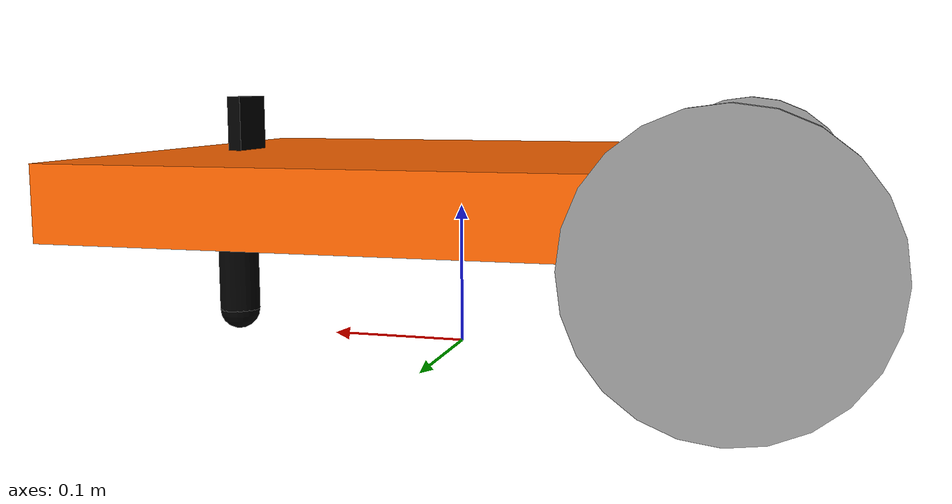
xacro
<?xml version="1.0"?>
<!-- Revolute-Revolute Manipulator -->
<robot name="mybot" xmlns:xacro="http://www.ros.org/wiki/xacro">

  <xacro:include filename="$(find mybot_description)/urdf/myelement_base.xacro" />
  <xacro:include filename="$(find mybot_description)/urdf/myelement_camera.xacro" />

  <xacro:property name="camera_offset_x" value="0.17" />
  <xacro:property name="camera_offset_y" value="0" />
  <xacro:property name="camera_offset_z" value="0.045" />

  <!-- Camera -->
  <joint name="camera_joint" type="fixed">
    <origin xyz="${camera_offset_x} ${camera_offset_y} ${camera_offset_z}" rpy="0 0 0" />
    <parent link="base_link" />
    <child link="camera_link" />
  </joint>

  <xacro:usb_camera prefix="camera" />

  <mbot_base_gazebo />

</robot>

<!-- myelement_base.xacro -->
<!-- Revolute-Revolute Manipulator -->
<robot name="mybot_base" xmlns:xacro="http://www.ros.org/wiki/xacro">

  <!-- PROPERTY LIST -->
  <!-- Constants for robot dimensions -->
  <xacro:property name="M_PI" value="3.1415926535897931" />

  <xacro:property name="base_mass" value="20" /> <!-- arbitrary value for mass -->
  <xacro:property name="base_length" value="0.45" />
  <xacro:property name="base_width" value="0.36" />
  <xacro:property name="base_height" value="0.05" />
  <xacro:property name="base_clearance" value="0.089" />

  <xacro:property name="wheel_mass" value="2" />
  <xacro:property name="wheel_radius" value="0.089" />
  <xacro:property name="wheel_length" value="0.025" />
  <xacro:property name="wheel_joint_y" value="${(base_width+wheel_length)/2}" />
  <xacro:property name="wheel_joint_x" value="0.20" />

  <xacro:property name="caster_link_mass" value="0.5" />
  <xacro:property name="caster_link_length" value="${base_clearance-caster_ball_radius}" /> <!-- wheel_radius - ( base_length/2 - wheel_joint_z) -->
  <xacro:property name="caster_ball_mass" value="0.5" />
  <xacro:property name="caster_ball_radius" value="0.015" />
  <xacro:property name="caster_joint_x" value="0.18" />

  <!-- Import all Gazebo-customization elements, including Gazebo colors -->
  <!-- Import Rviz colors -->
  <xacro:include filename="$(find mybot_description)/urdf/materials.xacro" />

  <!-- Macro for inertia matrix -->
  <xacro:macro name="sphere_inertial_matrix" params="m r">
    <inertial>
      <mass value="${m}" />
      <inertia ixx="${2*m*r*r/5}" ixy="0" ixz="0" iyy="${2*m*r*r/5}" iyz="0" izz="${2*m*r*r/5}" />
    </inertial>
  </xacro:macro>

  <xacro:macro name="cylinder_inertial_matrix" params="m r h">
    <inertial>
      <mass value="${m}" />
      <inertia ixx="${m*(3*r*r+h*h)/12}" ixy="0" ixz="0" iyy="${m*(3*r*r+h*h)/12}" iyz="0" izz="${m*r*r/2}" />
    </inertial>
  </xacro:macro>

  <xacro:macro name="box_inertial_matrix" params="m l w h">
    <inertia>
      <mass value="${m}" />
      <inertia ixx="${m / 12.0 * (l*l + h*h)}" ixy="0.0" ixz="0.0" iyy="${m / 12.0 * (l*l + w*w)}" iyz="0.0" izz="${m / 12.0 * (w*w + h*h)}" />
    </inertia>
  </xacro:macro>

  <!-- Macro for robot wheel -->
  <xacro:macro name="wheel" params="prefix reflect">
    <joint name="${prefix}_wheel_joint" type="continuous">
      <origin xyz="${-wheel_joint_x} ${reflect*wheel_joint_y} ${-(base_clearance-wheel_radius)-base_height/2}" rpy="0 0 0" />
      <parent link="base_link" />
      <child link="${prefix}_wheel_link" />
      <axis xyz="0 1 0" />
    </joint>

    <link name="${prefix}_wheel_link">
      <visual>
        <origin xyz="0 0 0" rpy="${M_PI/2} 0 0" />
        <geometry>
          <cylinder radius="${wheel_radius}" length="${wheel_length}" />
        </geometry>
        <material name="gray" />
      </visual>
      <collision>
        <origin xyz="0 0 0" rpy="${M_PI/2} 0 0" />
        <geometry>
          <cylinder radius="${wheel_radius}" length="${wheel_length}" />
        </geometry>
      </collision>
      <cylinder_inertial_matrix m="${wheel_mass}" r="${wheel_radius}" h="${wheel_length}" />
    </link>

    <gazebo reference="${prefix}_wheel_link">
      <material>Gazebo/Gray</material>
    </gazebo>

    <!-- Transmission is important to link the joints and the controller -->
    <transmission name="${prefix}_wheel_joint_trans">
      <type>transmission_interface/SimpleTransmission</type>
      <joint name="${prefix}_wheel_joint">
        <hardwareInterface>hardware_interface/VelocityJointInterface</hardwareInterface>
      </joint>
      <actuator name="${prefix}_wheel_joint_motor">
        <hardwareInterface>hardware_interface/VelocityJointInterface</hardwareInterface>
        <mechanicalReduction>1</mechanicalReduction>
      </actuator>
    </transmission>
  </xacro:macro>

  <!-- Macro for robot caster -->
  <xacro:macro name="caster" params="prefix reflect">
    <joint name="${prefix}_caster_joint" type="fixed">
      <origin xyz="${reflect*caster_joint_x} 0 ${-(base_height + caster_link_length)/2}" rpy="0 0 0" />
      <parent link="base_link" />
      <child link="${prefix}_caster_link" />
    </joint>

    <link name="${prefix}_caster_link">
      <visual>
        <origin xyz="0 0 0" rpy="0 0 0" />
        <geometry>
          <cylinder radius="${caster_ball_radius}" length="${caster_link_length}" />
        </geometry>
        <material name="black" />
      </visual>
      <collision>
        <origin xyz="0 0 0" rpy="0 0 0" />
        <geometry>
          <cylinder radius="${caster_ball_radius}" length="${caster_link_length}" />
        </geometry>
      </collision>
      <cylinder_inertial_matrix m="${caster_link_mass}" r="${caster_ball_radius}" h="${caster_link_length}" />
    </link>

    <gazebo reference="${prefix}_caster_link">
      <material>Gazebo/Black</material>
    </gazebo>

    <joint name="${prefix}_ball_joint" type="continuous">
      <origin xyz="0 0 ${-caster_link_length/2}" rpy="0 0 0" />
      <parent link="${prefix}_caster_link" />
      <child link="${prefix}_caster_ball" />
      <axis xyz="1 1 0" />
    </joint>

    <link name="${prefix}_caster_ball">
      <visual>
        <origin xyz="0 0 0" rpy="0 0 0" />
        <geometry>
          <sphere radius="${caster_ball_radius}" />
        </geometry>
        <material name="black" />
      </visual>
      <collision>
        <origin xyz="0 0 0" rpy="0 0 0" />
        <geometry>
          <sphere radius="${caster_ball_radius}" />
        </geometry>
      </collision>
      <sphere_inertial_matrix m="${caster_ball_mass}" r="${caster_ball_radius}" />
    </link>

    <gazebo reference="${prefix}_caster_ball">
      <material>Gazebo/Gray</material>
    </gazebo>
  </xacro:macro>

  <xacro:macro name="mbot_base_gazebo">
    <link name="base_footprint">
      <visual>
        <origin xyz="0 0 0" rpy="0 0 0" />
        <geometry>
          <box size="0.001 0.001 0.001" />
        </geometry>
      </visual>
    </link>
    <gazebo reference="base_footprint">
      <turnGravityOff>false</turnGravityOff>
    </gazebo>

    <joint name="base_footprint_joint" type="fixed">
      <origin xyz="0 0 ${base_clearance+base_height/2}" rpy="0 0 0" />
      <parent link="base_footprint" />
      <child link="base_link" />
    </joint>

    <link name="base_link">
      <visual>
        <geometry>
          <box size="${base_length} ${base_width} ${base_height}" />
        </geometry>
        <material name="yellow" />
      </visual>
      <collision>
        <origin xyz=" 0 0 0" rpy="0 0 0" />
        <geometry>
          <box size="${base_length} ${base_width} ${base_height}" />
          >
        </geometry>
      </collision>
      <box_inertial_matrix m="${base_mass}" l="${base_length}" w="${base_width}" h="${base_height} " />
    </link>

    <gazebo reference="base_link">
      <material>Gazebo/Blue</material>
    </gazebo>

    <wheel prefix="left" reflect="1" />
    <wheel prefix="right" reflect="-1" />

    <caster prefix="front" reflect="1" />

    <!-- controller -->
    <gazebo>
      <plugin name="differential_drive_controller" filename="libgazebo_ros_diff_drive.so">
        <rosDebugLevel>Debug</rosDebugLevel>
        <publishWheelTF>true</publishWheelTF>
        <robotNamespace>/</robotNamespace>
        <publishTf>1</publishTf>
        <publishWheelJointState>true</publishWheelJointState>
        <alwaysOn>true</alwaysOn>
        <updateRate>100.0</updateRate>
        <legacyMode>true</legacyMode>
        <leftJoint>left_wheel_joint</leftJoint>
        <rightJoint>right_wheel_joint</rightJoint>
        <wheelSeparation>${base_width}</wheelSeparation>
        <wheelDiameter>${2*wheel_radius}</wheelDiameter>
        <broadcastTF>1</broadcastTF>
        <wheelTorque>30</wheelTorque>
        <wheelAcceleration>1.8</wheelAcceleration>
        <commandTopic>cmd_vel</commandTopic>
        <odometryFrame>odom</odometryFrame>
        <odometryTopic>odom</odometryTopic>
        <robotBaseFrame>base_footprint</robotBaseFrame>
      </plugin>
    </gazebo>
  </xacro:macro>

  <![CDATA[
  <!-- Used for fixing robot to Gazebo 'base_link' -->
  <link name="world"/>

  <joint name="fixed" type="fixed">
    <parent link="world"/>
    <child link="link1"/>
  </joint>

  <!-- Base Link -->
  <link name="link1">
    <collision>
      <origin xyz="0 0 ${height1/2}" rpy="0 0 0"/>
      <geometry>
	<box size="${width} ${width} ${height1}"/>
      </geometry>
    </collision>

    <visual>
      <origin xyz="0 0 ${height1/2}" rpy="0 0 0"/>
      <geometry>
	<box size="${width} ${width} ${height1}"/>
      </geometry>
      <material name="orange"/>
    </visual>

    <inertial>
      <origin xyz="0 0 ${height1/2}" rpy="0 0 0"/>
      <mass value="${mass}"/>
      <inertia
	  ixx="${mass / 12.0 * (width*width + height1*height1)}" ixy="0.0" ixz="0.0"
	  iyy="${mass / 12.0 * (height1*height1 + width*width)}" iyz="0.0"
	  izz="${mass / 12.0 * (width*width + width*width)}"/>
    </inertial>
  </link>

  <joint name="joint1" type="continuous">
    <parent link="link1"/>
    <child link="link2"/>
    <origin xyz="0 ${width} ${height1 - axel_offset}" rpy="0 0 0"/>
    <axis xyz="0 1 0"/>
    <dynamics damping="0.7"/>
  </joint>

  <!-- Middle Link -->
  <link name="link2">
    <collision>
      <origin xyz="0 0 ${height2/2 - axel_offset}" rpy="0 0 0"/>
      <geometry>
	<box size="${width} ${width} ${height2}"/>
      </geometry>
    </collision>

    <visual>
      <origin xyz="0 0 ${height2/2 - axel_offset}" rpy="0 0 0"/>
      <geometry>
	<box size="${width} ${width} ${height2}"/>
      </geometry>
      <material name="black"/>
    </visual>

    <inertial>
      <origin xyz="0 0 ${height2/2 - axel_offset}" rpy="0 0 0"/>
      <mass value="${mass}"/>
      <inertia
	  ixx="${mass / 12.0 * (width*width + height2*height2)}" ixy="0.0" ixz="0.0"
	  iyy="${mass / 12.0 * (height2*height2 + width*width)}" iyz="0.0"
	  izz="${mass / 12.0 * (width*width + width*width)}"/>
    </inertial>
  </link>

  <joint name="joint2" type="continuous">
    <parent link="link2"/>
    <child link="link3"/>
    <origin xyz="0 ${width} ${height2 - axel_offset*2}" rpy="0 0 0"/>
    <axis xyz="0 1 0"/>
    <dynamics damping="0.7"/>
  </joint>

  <!-- Top Link -->
  <link name="link3">
    <collision>
      <origin xyz="0 0 ${height3/2 - axel_offset}" rpy="0 0 0"/>
      <geometry>
	<box size="${width} ${width} ${height3}"/>
      </geometry>
    </collision>

    <visual>
      <origin xyz="0 0 ${height3/2 - axel_offset}" rpy="0 0 0"/>
      <geometry>
	<box size="${width} ${width} ${height3}"/>
      </geometry>
      <material name="orange"/>
    </visual>

    <inertial>
      <origin xyz="0 0 ${height3/2 - axel_offset}" rpy="0 0 0"/>
      <mass value="${mass}"/>
      <inertia
	  ixx="${mass / 12.0 * (width*width + height3*height3)}" ixy="0.0" ixz="0.0"
	  iyy="${mass / 12.0 * (height3*height3 + width*width)}" iyz="0.0"
	  izz="${mass / 12.0 * (width*width + width*width)}"/>
    </inertial>
  </link>

  <joint name="hokuyo_joint" type="fixed">
    <axis xyz="0 1 0" />
    <origin xyz="0 0 ${height3 - axel_offset/2}" rpy="0 0 0"/>
    <parent link="link3"/>
    <child link="hokuyo_link"/>
  </joint>

  <!-- Hokuyo Laser -->
  <link name="hokuyo_link">
    <collision>
      <origin xyz="0 0 0" rpy="0 0 0"/>
      <geometry>
	<box size="0.1 0.1 0.1"/>
      </geometry>
    </collision>

    <visual>
      <origin xyz="0 0 0" rpy="0 0 0"/>
      <geometry>
        <mesh filename="package://rrbot_description/meshes/hokuyo.dae"/>
      </geometry>
    </visual>

    <inertial>
      <mass value="1e-5" />
      <origin xyz="0 0 0" rpy="0 0 0"/>
      <inertia ixx="1e-6" ixy="0" ixz="0" iyy="1e-6" iyz="0" izz="1e-6" />
    </inertial>
  </link>

  <joint name="camera_joint" type="fixed">
    <axis xyz="0 1 0" />
    <origin xyz="${camera_link} 0 ${height3 - axel_offset*2}" rpy="0 0 0"/>
    <parent link="link3"/>
    <child link="camera_link"/>
  </joint>

  <!-- Camera -->
  <link name="camera_link">
    <collision>
      <origin xyz="0 0 0" rpy="0 0 0"/>
      <geometry>
	<box size="${camera_link} ${camera_link} ${camera_link}"/>
      </geometry>
    </collision>

    <visual>
      <origin xyz="0 0 0" rpy="0 0 0"/>
      <geometry>
	<box size="${camera_link} ${camera_link} ${camera_link}"/>
      </geometry>
      <material name="red"/>
    </visual>

    <inertial>
      <mass value="1e-5" />
      <origin xyz="0 0 0" rpy="0 0 0"/>
      <inertia ixx="1e-6" ixy="0" ixz="0" iyy="1e-6" iyz="0" izz="1e-6" />
    </inertial>
  </link>

  <!-- generate an optical frame http://www.ros.org/reps/rep-0103.html#suffix-frames
      so that ros and opencv can operate on the camera frame correctly -->
  <joint name="camera_optical_joint" type="fixed">
    <!-- these values have to be these values otherwise the gazebo camera image
        won't be aligned properly with the frame it is supposedly originating from -->
    <origin xyz="0 0 0" rpy="${-pi/2} 0 ${-pi/2}"/>
    <parent link="camera_link"/>
    <child link="camera_link_optical"/>
  </joint>

  <link name="camera_link_optical">
  </link>

  <transmission name="tran1">
    <type>transmission_interface/SimpleTransmission</type>
    <joint name="joint1">
      <hardwareInterface>hardware_interface/EffortJointInterface</hardwareInterface>
    </joint>
    <actuator name="motor1">
      <hardwareInterface>hardware_interface/EffortJointInterface</hardwareInterface>
      <mechanicalReduction>1</mechanicalReduction>
    </actuator>
  </transmission>

  <transmission name="tran2">
    <type>transmission_interface/SimpleTransmission</type>
    <joint name="joint2">
      <hardwareInterface>hardware_interface/EffortJointInterface</hardwareInterface>
    </joint>
    <actuator name="motor2">
      <hardwareInterface>hardware_interface/EffortJointInterface</hardwareInterface>
      <mechanicalReduction>1</mechanicalReduction>
    </actuator>
  </transmission>

  ]]>

</robot>

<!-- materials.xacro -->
<robot>
  <material name="yellow">
    <color rgba="1 0.4 0 1"/>
  </material>

  <material name="black">
    <color rgba="0.0 0.0 0.0 1.0"/>
  </material>

  <material name="blue">
    <color rgba="0.0 0.0 0.8 1.0"/>
  </material>

  <material name="green">
    <color rgba="0.0 0.8 0.0 1.0"/>
  </material>

  <material name="grey">
    <color rgba="0.2 0.2 0.2 1.0"/>
  </material>

  <material name="orange">
    <color rgba="${255/255} ${108/255} ${10/255} 1.0"/>
  </material>

  <material name="brown">
    <color rgba="${222/255} ${207/255} ${195/255} 1.0"/>
  </material>

  <material name="red">
    <color rgba="0.8 0.0 0.0 1.0"/>
  </material>

  <material name="white">
    <color rgba="1.0 1.0 1.0 1.0"/>
  </material>

</robot>

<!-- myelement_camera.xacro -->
<!-- Revolute-Revolute Manipulator -->
<robot name="rrbot" xmlns:xacro="http://www.ros.org/wiki/xacro">

  <xacro:macro name="usb_camera" params="prefix:=camera">
    <!-- Create laser reference frame -->
    <link name="${prefix}_link">
      <inertial>
        <mass value="0.1" />
        <origin xyz="0 0 0" />
        <inertia ixx="0.01" ixy="0.0" ixz="0.0" iyy="0.01" iyz="0.0" izz="0.01" />
      </inertial>

      <visual>
        <origin xyz=" 0 0 0 " rpy="0 0 0" />
        <geometry>
          <box size="0.01 0.04 0.04" />
        </geometry>
        <material name="black" />
      </visual>

      <collision>
        <origin xyz="0.0 0.0 0.0" rpy="0 0 0" />
        <geometry>
          <box size="0.01 0.04 0.04" />
        </geometry>
      </collision>
    </link>

    <joint name="${prefix}_optical_joint" type="fixed">
      <origin xyz="0 0 0" rpy="${-pi/2} 0 ${-pi/2}" />
      <parent link="${prefix}_link" />
      <child link="${prefix}_frame_optical" />
    </joint>

    <link name="${prefix}_frame_optical" />

    <gazebo reference="${prefix}_link">
      <material>Gazebo/Black</material>
    </gazebo>

    <gazebo reference="${prefix}_link">
      <sensor type="camera" name="camera_node">
        <update_rate>30.0</update_rate>
        <camera name="head">
          <horizontal_fov>1.3962634</horizontal_fov>
          <image>
            <width>1280</width>
            <height>720</height>
            <format>R8G8B8</format>
          </image>
          <clip>
            <near>0.02</near>
            <far>300</far>
          </clip>
          <noise>
            <type>gaussian</type>
            <!-- Noise is sampled independently per pixel on each frame.
               That pixel's noise value is added to each of its color
               channels, which at that point lie in the range [0,1]. -->
            <mean>0.0</mean>
            <stddev>0.007</stddev>
          </noise>
        </camera>
        <plugin name="gazebo_camera" filename="libgazebo_ros_camera.so">
          <alwaysOn>true</alwaysOn>
          <updateRate>0.0</updateRate>
          <cameraName>/camera</cameraName>
          <imageTopicName>image_raw</imageTopicName>
          <cameraInfoTopicName>camera_info</cameraInfoTopicName>
          <frameName>${prefix}_frame_optical</frameName>
          <!-- setting hackBaseline to anything but 0.0 will cause a misalignment
            between the gazebo sensor image and the frame it is supposed to
            be attached to -->
          <hackBaseline>0.01</hackBaseline>
          <distortionK1>0.0</distortionK1>
          <distortionK2>0.0</distortionK2>
          <distortionK3>0.0</distortionK3>
          <distortionT1>0.0</distortionT1>
          <distortionT2>0.0</distortionT2>
          <CxPrime>0</CxPrime>
          <Cx>0.0</Cx>
          <Cy>0.0</Cy>
          <focalLength>0.0</focalLength>
        </plugin>
      </sensor>
    </gazebo>

  </xacro:macro>

  <![CDATA[
  <!-- Camera -->
  <link name="camera_link">
    <collision>
      <origin xyz="0 0 0" rpy="0 0 0"/>
      <geometry>
	<box size="${camera_link} ${camera_link} ${camera_link}"/>
      </geometry>
    </collision>

    <visual>
      <origin xyz="0 0 0" rpy="0 0 0"/>
      <geometry>
	<box size="${camera_link} ${camera_link} ${camera_link}"/>
      </geometry>
      <material name="red"/>
    </visual>

    <inertial>
      <mass value="1e-5" />
      <origin xyz="0 0 0" rpy="0 0 0"/>
      <inertia ixx="1e-6" ixy="0" ixz="0" iyy="1e-6" iyz="0" izz="1e-6" />
    </inertial>
  </link>

  <!-- generate an optical frame http://www.ros.org/reps/rep-0103.html#suffix-frames
      so that ros and opencv can operate on the camera frame correctly -->
  <joint name="camera_optical_joint" type="fixed">
    <!-- these values have to be these values otherwise the gazebo camera image
        won't be aligned properly with the frame it is supposedly originating from -->
    <origin xyz="0 0 0" rpy="${-pi/2} 0 ${-pi/2}"/>
    <parent link="camera_link"/>
    <child link="camera_link_optical"/>
  </joint>

  <link name="camera_link_optical">
  </link>

  <transmission name="tran1">
    <type>transmission_interface/SimpleTransmission</type>
    <joint name="joint1">
      <hardwareInterface>hardware_interface/EffortJointInterface</hardwareInterface>
    </joint>
    <actuator name="motor1">
      <hardwareInterface>hardware_interface/EffortJointInterface</hardwareInterface>
      <mechanicalReduction>1</mechanicalReduction>
    </actuator>
  </transmission>

  <transmission name="tran2">
    <type>transmission_interface/SimpleTransmission</type>
    <joint name="joint2">
      <hardwareInterface>hardware_interface/EffortJointInterface</hardwareInterface>
    </joint>
    <actuator name="motor2">
      <hardwareInterface>hardware_interface/EffortJointInterface</hardwareInterface>
      <mechanicalReduction>1</mechanicalReduction>
    </actuator>
  </transmission>

  ]]>

</robot>
